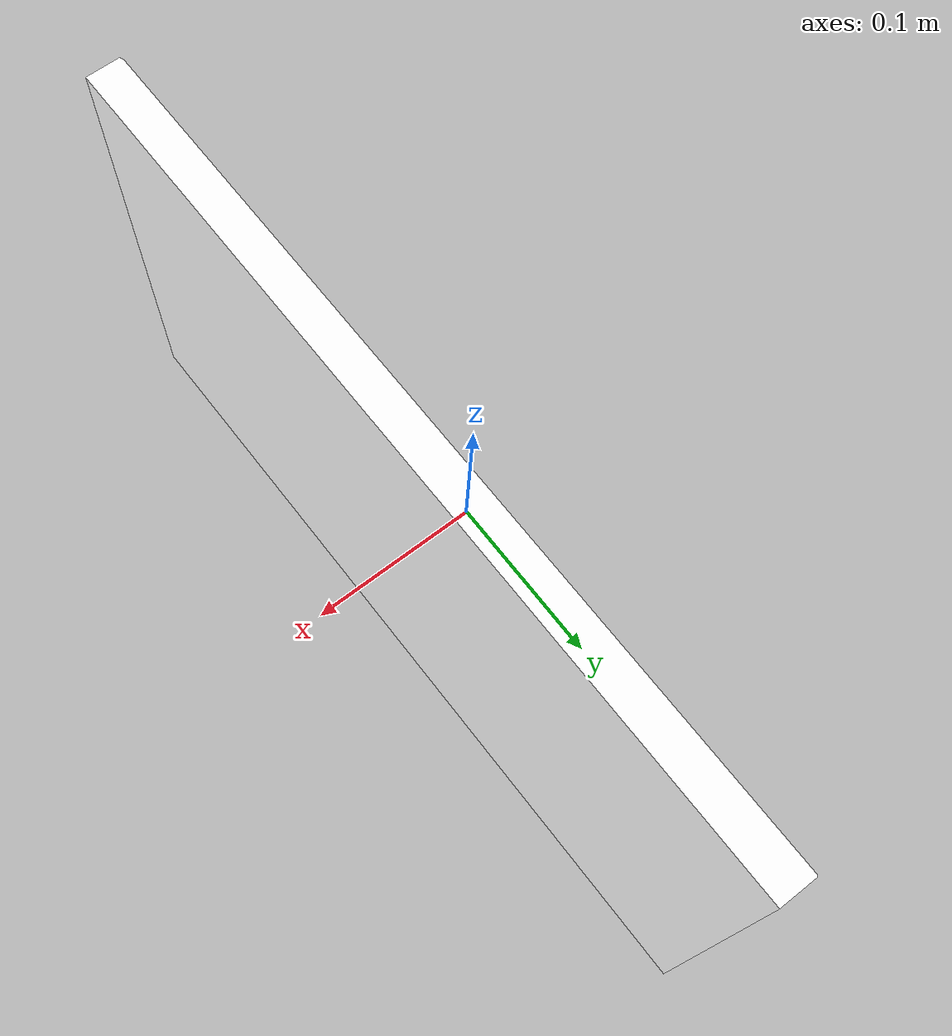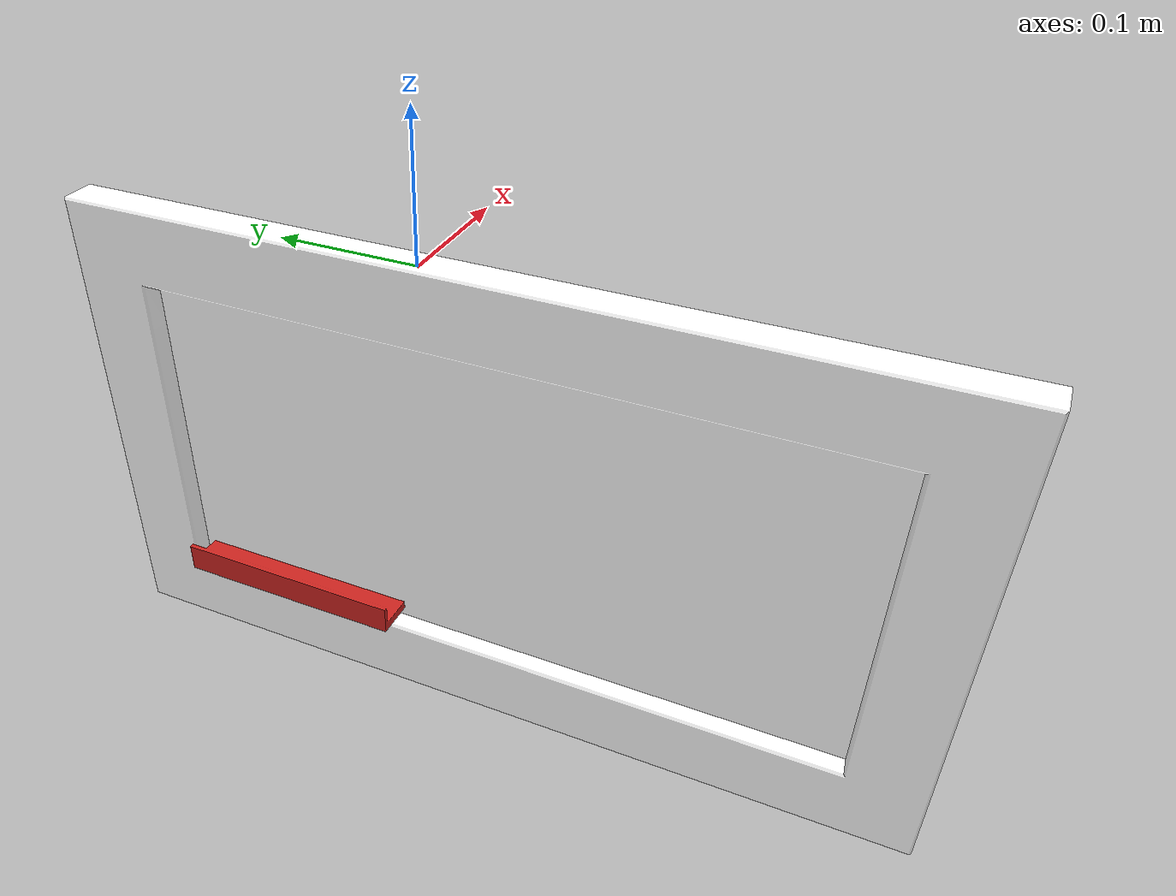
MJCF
<mujoco model="Cabinet_67e9cbea">
  <compiler autolimits="true" boundmass="0.01" angle="radian"/>
  <default>
    <default class="/">
      <default class="__VISUAL_MJT__">
        <geom contype="0" conaffinity="0" group="0"/>
      </default>
      <default class="__STRUCTURAL_MJT__">
        <geom contype="8" conaffinity="15" group="4" friction="0.90000000000000002 0.90000000000000002 0.001" solref="0.025000000000000001 1" solimp="0.998 0.998 0.001"/>
      </default>
      <default class="__DYNAMIC_MJT__">
        <geom contype="1" conaffinity="15" group="4" friction="0.90000000000000002 0.90000000000000002 0.001" solref="0.025000000000000001 1" solimp="0.998 0.998 0.001"/>
      </default>
    </default>
  </default>
  <asset>
    <material name="material_WhiteWoodClean" class="/" specular="0.5" shininess="0.5" rgba="1 1 1 1"/>
    <mesh name="Cabinet_67e9cbea_Mesh_01_53c6d27a" class="/" file="Cabinet_67e9cbea_Mesh_01_53c6d27a/Cabinet_67e9cbea_Mesh_01_53c6d27a.obj" scale="1 1 1" inertia="legacy"/>
    <texture name="HammeredMetal_AlbedoTransparency_2" type="2d" file="HammeredMetal_AlbedoTransparency.png"/>
    <material name="material_HammeredMetal_AlbedoTransparency_2" class="/" texture="HammeredMetal_AlbedoTransparency_2" specular="0.5" shininess="0.5" rgba="1 0.93407709999999999 0.81617649999999997 1"/>
    <mesh name="Cabinet_67e9cbea_handle_3_178mm_01_49c5c896" class="/" file="Cabinet_67e9cbea_handle_3_178mm_01_49c5c896/Cabinet_67e9cbea_handle_3_178mm_01_49c5c896.obj" scale="1 1 1" inertia="legacy"/>
  </asset>
  <worldbody>
    <body name="Cabinet_67e9cbea">
      <body name="Cabinet_67e9cbea_Mesh_01_53c6d27a" pos="0.0094000101089477539 0 0" quat="0.70710678118654757 0 -0.70710678118654746 0">
        <geom name="Cabinet_67e9cbea_Mesh_01_53c6d27a" class="__VISUAL_MJT__" type="mesh" material="material_WhiteWoodClean" mesh="Cabinet_67e9cbea_Mesh_01_53c6d27a"/>
        <joint name="Cabinet_67e9cbea_joint" class="/" type="hinge" pos="-0 0 0" axis="0 -1 0" stiffness="0" range="-1.5707963267948966 0" damping="0.10000000000000001" frictionloss="0"/>
        <geom name="Cabinet_67e9cbea_Mesh_01_53c6d27a_PrimitiveCollider_0" class="__DYNAMIC_MJT__" type="box" size="0.18000043928623199 0.3200002908706665 0.013550045900046825" rgba="0 1 0 1" pos="-0.17500002682209015 -0.05499991774559021 0.013549946248531342" quat="0 1 0 0"/>
        <body name="Cabinet_67e9cbea_handle_3_178mm_01_49c5c896" pos="-0.28800004720687866 0.11200001835823059 0.010000020265579224" quat="0.70710678118654757 0 0 -0.70710678118654746">
          <geom name="Cabinet_67e9cbea_handle_3_178mm_01_49c5c896" class="__VISUAL_MJT__" type="mesh" material="material_HammeredMetal_AlbedoTransparency_2" mesh="Cabinet_67e9cbea_handle_3_178mm_01_49c5c896"/>
          <geom name="Cabinet_67e9cbea_handle_3_178mm_01_49c5c896_PrimitiveCollider_0" class="__DYNAMIC_MJT__" type="box" size="0.088752113282680511 0.0035549132153391838 0.016431534662842751" rgba="0 1 0 1" pos="3.8838265936647076e-09 7.7676531873294152e-09 0.016289953142404556" quat="0 1 0 0"/>
          <geom name="Cabinet_67e9cbea_handle_3_178mm_01_49c5c896_PrimitiveCollider_1" class="__DYNAMIC_MJT__" type="box" size="0.088752113282680511 0.0077598174102604389 0.0019227263983339071" rgba="0 1 0 1" pos="-6.1096301351426519e-09 0.011284905485808849 0.030798792839050293" quat="0 1 0 0"/>
        </body>
      </body>
    </body>
  </worldbody>
  <contact>
    <exclude name="//unnamed_contact_0" body1="Cabinet_67e9cbea_Mesh_01_53c6d27a" body2="Cabinet_67e9cbea_handle_3_178mm_01_49c5c896"/>
  </contact>
</mujoco>
